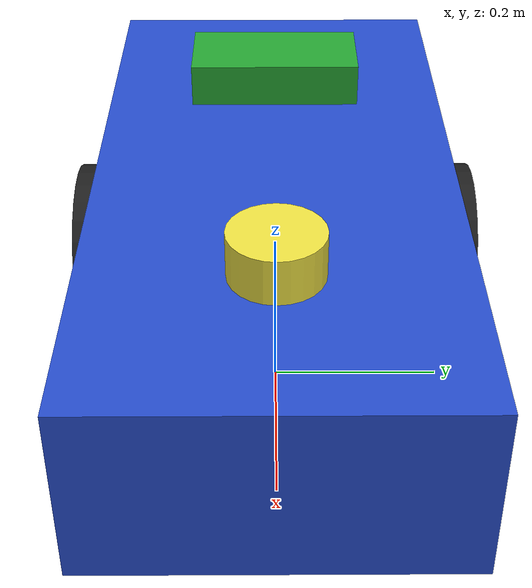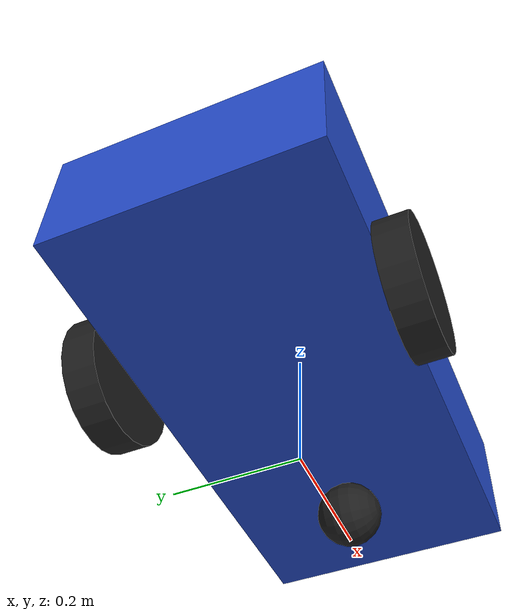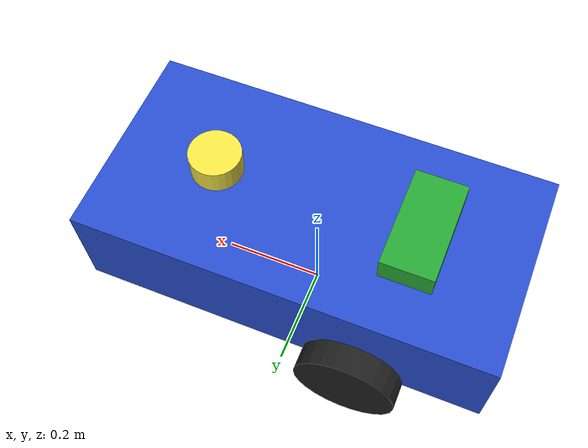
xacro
<?xml version= "1.0"?>
<robot xmlns:xacro="http://www.ros.org/wiki/xacro">

    <xacro:property name="wheel_radius" value="0.1"/>
    <xacro:property name="wheel_width"  value="0.05"/>
    <xacro:property name="base_length"  value="0.8"/>
    <xacro:property name="base_width"  value="0.4"/>
    <xacro:property name="base_height"  value="0.2"/>
    <xacro:property name="lidar" value="0.05" />

    <link name= "base_footprint_link">
    </link>

    <link name= "base_link">
        <visual>
            <geometry>
                <box size = "${base_length} ${base_width} ${base_height}" /> <!-- all dimensions are in meters -->
            </geometry>
            <origin xyz = "0 0 0.1" rpy = "0 0 0"/>
            <material name= "blue" />
        </visual>
        <collision>
            <geometry>
                <box size = "${base_length} ${base_width} ${base_height}" /> <!-- all dimensions are in meters -->
            </geometry>
            <origin xyz = "0 0 0.1" rpy = "0 0 0"/>
        </collision>
        <xacro:box_inertia m="5.0" x="${base_length}" y="${base_width}" z="${base_height}"
                            o_xyz="0 0 ${base_height / 2}" o_rpy="0 0 0"
        />
    </link>

    <link name= "imu_link">
        <visual>
                <geometry>
                    <box size = "0.2 0.1 0.05" />
                </geometry>
            <origin xyz = "0 0 0.025" rpy = "0 0 0"/>
            <material name= "green" />
        </visual>
        <collision>
            <geometry>
                <box size = "0.2 0.1 0.05" />
            </geometry>
            <origin xyz = "0 0 0.025" rpy = "0 0 0"/>
        </collision>
        <xacro:box_inertia m="0.2" x="${base_height}" y="${base_height / 2}" z="0.05"
                            o_xyz="0 0 0.025" o_rpy="0 0 0" />
    </link>

    <xacro:macro name="wheel_link" params="prefix name" >
        <link name= "${prefix}${name}">
            <visual>
                <geometry>
                    <cylinder radius = "${wheel_radius}" length="${wheel_width}"/>
                </geometry>
                <origin xyz = "0 0 0" rpy = "${pi / 2} 0 0"/>
                <material name= "black" />
            </visual>
            <collision>
                <geometry>
                    <sphere radius = "${wheel_radius}"/>
                </geometry>
                <origin xyz = "0 0 0" rpy = "${pi / 2} 0 0"/>
            </collision>
            <inertial>
                <origin xyz="0 0 0" rpy="0 0 0"/>
                <mass value="0.5"/>
                <inertia
                    ixx="${0.5 * 0.5 * wheel_radius * wheel_radius}"
                    iyy="${(1/12) * 0.5 * (3 * wheel_radius * wheel_radius + wheel_width * wheel_width)}"
                    izz="${(1/12) * 0.5 * (3 * wheel_radius * wheel_radius + wheel_width * wheel_width)}"
                    ixy="0" ixz="0" iyz="0"/>
            </inertial>
        </link>
    </xacro:macro>

    <link name ="lidar_link" >
        <visual>
            <geometry>
                <cylinder radius="${lidar}" length="${lidar}"/>
            </geometry>
            <origin xyz="0 0 0.025" rpy="0 0 0" />
        </visual>
        <collision>
            <geometry>
                <cylinder radius="${lidar}" length="${lidar}"/>
            </geometry>
            <origin xyz="0 0 0.025" rpy="0 0 0" />
        </collision>
            <inertial>
                <origin xyz="0 0 0.025" rpy="0 0 0"/>
                <mass value="0.5"/>
                <inertia
                    ixx="${0.5 * 0.5 * lidar * lidar}"
                    iyy="${(1/12) * 0.5 * (3 * lidar * lidar + lidar * lidar)}"
                    izz="${(1/12) * 0.5 * (3 * lidar * lidar + lidar * lidar)}"
                    ixy="0" ixz="0" iyz="0"/>
            </inertial>
    </link>

    <xacro:wheel_link prefix="left_"  name="wheel_link"/>
    <xacro:wheel_link prefix="right_" name="wheel_link"/>

    <link name= "caster_wheel_link">
        <visual>
            <geometry>
                <sphere radius = "0.05"/>
            </geometry>
            <origin xyz = "0 0 -0.025" rpy = "${pi / 2} 0 0"/>
            <material name= "black" />
        </visual>
        <collision>
            <geometry>
                <sphere radius = "0.05"/>
            </geometry>
            <origin xyz = "0 0 -0.025" rpy = "${pi / 2} 0 0"/>
        </collision>
        <inertial>
            <origin xyz="0 0 0" rpy="0 0 0"/>
            <mass value="0.2"/>
            <inertia
                ixx="${(2/5) * 0.2 * 0.05 * 0.05}"
                iyy="${(2/5) * 0.2 * 0.05 * 0.05}"
                izz="${(2/5) * 0.2 * 0.05 * 0.05}"
                ixy="0" ixz="0" iyz="0"/>
        </inertial>
    </link>

    <joint name = "base_footprint_joint" type="fixed" >
        <parent link="base_footprint_link" />
        <child link="base_link" />
        <origin xyz="0 0 0.1" rpy="0 0 0" />
    </joint>

    <joint name="base_imu_joint" type="fixed">
        <parent link="base_link" />
        <child link="imu_link" />
        <origin xyz="-0.2 0 ${base_height}" rpy="0 0 ${pi /2}"/>
    </joint>

    <joint name="base_left_wheel_joint" type="continuous">
        <parent link="base_link" />
        <child link="left_wheel_link" />
        <origin xyz="-0.15 -0.225 0" rpy="0 1 0"/>
        <axis xyz="0 1 0" />
    </joint>

    <joint name="base_right_wheel_joint" type="continuous">
        <parent link="base_link" />
        <child link="right_wheel_link" />
        <origin xyz="-0.15 0.225 0" rpy="0 1 0"/>
        <axis xyz="0 1 0" />
    </joint>

    <joint name="base_caster_wheel_joint" type="fixed">
        <parent link="base_link" />
        <child link="caster_wheel_link" />
        <origin xyz="${base_height} 0 -0.025" rpy="0 0 0"/>
    </joint>

    <joint name="base_lidar_joint" type="continuous">
        <parent link="base_link" />
        <child link="lidar_link" />
        <origin xyz="0.2 0 ${base_height}" rpy="0 0 0"/>
        <axis xyz="0 0 1" />
    </joint>

</robot>
